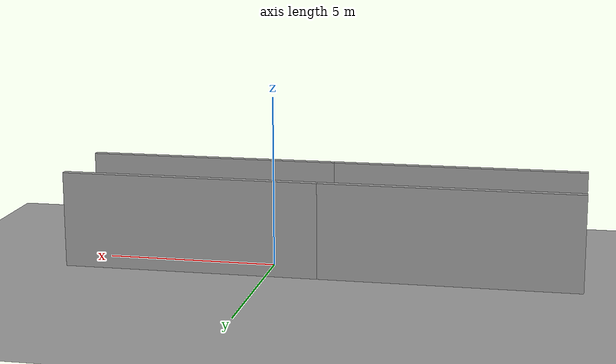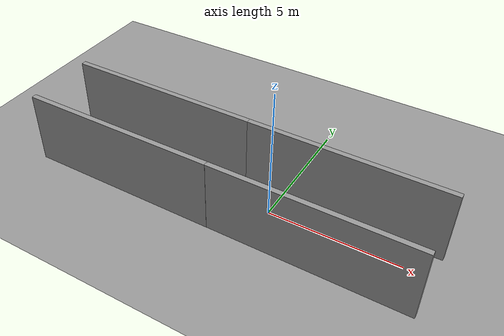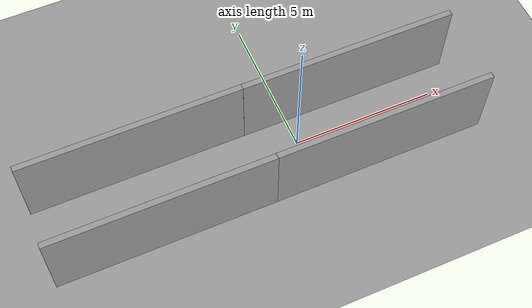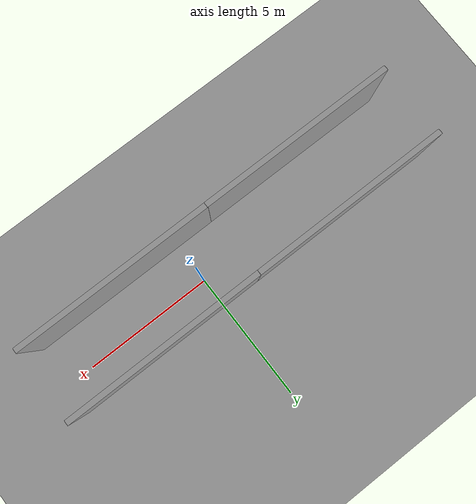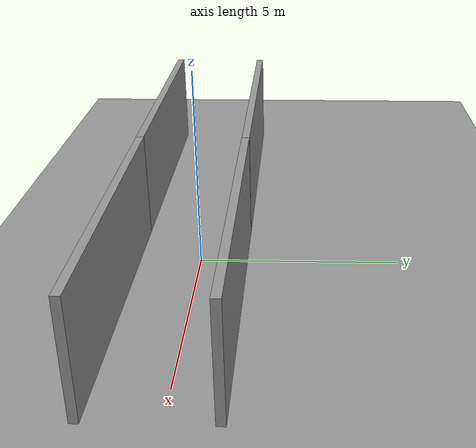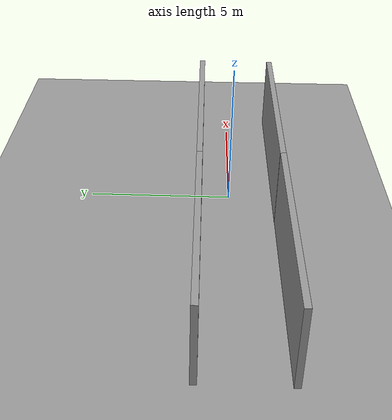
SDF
<sdf version="1.6">
 <world name="default">
  <light name="sun" type="directional">
   <pose>0 0 10 0 -0 0</pose>
   <diffuse>0.8 0.8 0.8 1</diffuse>
   <specular>0.2 0.2 0.2 1</specular>
   <attenuation>
    <range>1000</range>
    <constant>0.9</constant>
    <linear>0.01</linear>
    <quadratic>0.001</quadratic>
   </attenuation>
   <direction>0.5 0.1 -0.9</direction>
  </light>
  <scene><ambient>0.4 0.4 0.4 1</ambient><background>0.7 0.7 0.7 1</background><shadows>1</shadows></scene>
  <physics name="default_physics" default="0" type="ode">
   <max_step_size>0.01</max_step_size>
   <real_time_factor>1</real_time_factor>
   <real_time_update_rate>100</real_time_update_rate>
  </physics>
  <model name="ground_plane_0">
   <static>1</static>
   <link name="link">
    <collision name="collision">
     <geometry><plane><normal>0 0 1</normal><size>100 100</size></plane></geometry>
     <surface><friction><ode><mu>100</mu><mu2>50</mu2></ode></friction></surface>
    </collision>
    <visual name="visual">
     <cast_shadows>0</cast_shadows>
     <geometry><plane><normal>0 0 1</normal><size>100 100</size></plane></geometry>
     <material>
      <script><uri>file://media/materials/scripts/gazebo.material</uri><name>Gazebo/Grey</name></script>
     </material>
    </visual>
    <velocity_decay><linear>0</linear><angular>0</angular></velocity_decay>
   </link>
   <pose>0.497681 0 0 0 -0 0</pose>
  </model>
  <gravity>0 0 -9.8</gravity>
  <magnetic_field>6e-06 2.3e-05 -4.2e-05</magnetic_field>
  <atmosphere type="adiabatic"/>
  <spherical_coordinates>
   <surface_model>EARTH_WGS84</surface_model>
   <latitude_deg>0</latitude_deg>
   <longitude_deg>0</longitude_deg>
   <elevation>0</elevation>
   <heading_deg>0</heading_deg>
  </spherical_coordinates>
  <model name="grey_wall_7">
   <static>1</static>
   <link name="link">
    <pose>0 0 1.4 0 -0 0</pose>
    <collision name="collision"><geometry><box><size>7.5 0.2 2.8</size></box></geometry></collision>
    <visual name="visual">
     <cast_shadows>0</cast_shadows>
     <geometry><box><size>7.5 0.2 2.8</size></box></geometry>
     <material>
      <script>
       <uri>model://grey_wall/materials/scripts</uri>
       <uri>model://grey_wall/materials/textures</uri>
       <name>vrc/grey_wall</name>
      </script>
     </material>
    </visual>
   </link>
   <pose>2.23905 -1.65737 0 0 -0 0</pose>
  </model>
  <model name="grey_wall_8">
   <static>1</static>
   <link name="link">
    <pose>0 0 1.4 0 -0 0</pose>
    <collision name="collision"><geometry><box><size>7.5 0.2 2.8</size></box></geometry></collision>
    <visual name="visual">
     <cast_shadows>0</cast_shadows>
     <geometry><box><size>7.5 0.2 2.8</size></box></geometry>
     <material>
      <script>
       <uri>model://grey_wall/materials/scripts</uri>
       <uri>model://grey_wall/materials/textures</uri>
       <name>vrc/grey_wall</name>
      </script>
     </material>
    </visual>
   </link>
   <pose>-5.24204 -1.6618 0 0 -0 0</pose>
  </model>
  <model name="grey_wall">
   <static>1</static>
   <link name="link">
    <pose>0 0 1.4 0 -0 0</pose>
    <collision name="collision"><geometry><box><size>7.5 0.2 2.8</size></box></geometry></collision>
    <visual name="visual">
     <cast_shadows>0</cast_shadows>
     <geometry><box><size>7.5 0.2 2.8</size></box></geometry>
     <material>
      <script>
       <uri>model://grey_wall/materials/scripts</uri>
       <uri>model://grey_wall/materials/textures</uri>
       <name>vrc/grey_wall</name>
      </script>
     </material>
    </visual>
   </link>
   <pose>-5.25189 1.08947 0 0 -0 0</pose>
  </model>
  <model name="grey_wall_0">
   <static>1</static>
   <link name="link">
    <pose>0 0 1.4 0 -0 0</pose>
    <collision name="collision"><geometry><box><size>7.5 0.2 2.8</size></box></geometry></collision>
    <visual name="visual">
     <cast_shadows>0</cast_shadows>
     <geometry><box><size>7.5 0.2 2.8</size></box></geometry>
     <material>
      <script>
       <uri>model://grey_wall/materials/scripts</uri>
       <uri>model://grey_wall/materials/textures</uri>
       <name>vrc/grey_wall</name>
      </script>
     </material>
    </visual>
   </link>
   <pose>2.2485 1.0873 0 0 -0 0</pose>
  </model>
 </world>
</sdf>
